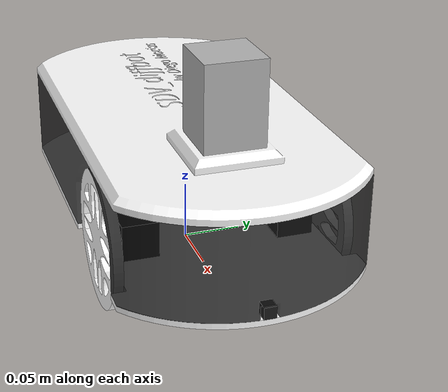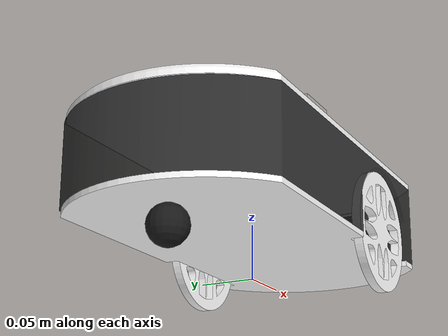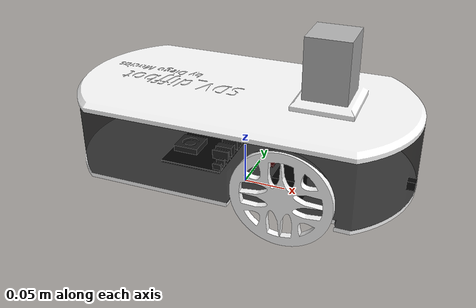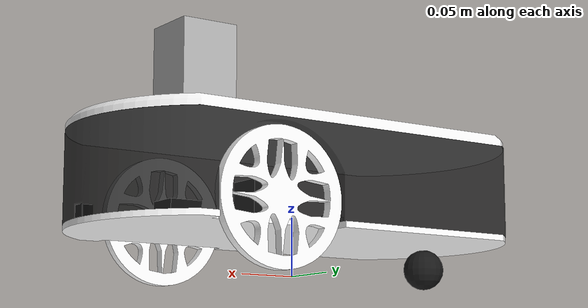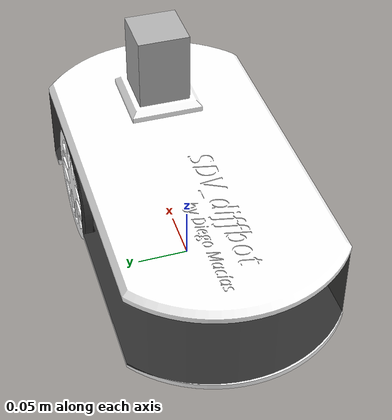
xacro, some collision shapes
<?xml version="1.0"?>
<robot name="puzzlebot" xmlns:xacro="http://ros.org/wiki/xacro">
  <xacro:property name="package_name" value="SDV_diffbot_sim"/>
  <xacro:property name="PI" value="3.14159265"/>
  <xacro:property name="wheelSeparation" value="0.180"/>
  <xacro:property name="wheelDiameter" value="0.112"/>
  <xacro:property name="wheelThickness" value="0.008"/>
  <xacro:property name="base_elevation" value="0.025"/>

  <xacro:arg name="base_color"    default="0.0 1.0 0.0 1.0"/>
  <xacro:arg name="ns" default="r1"/>

  <material name="gray">
    <color rgba="0.4 0.4 0.4 1.0"/>
  </material>

  <material name="gray2">
    <color rgba="0.6 0.6 0.6 1.0"/>
  </material>
  <material name="gray3">
    <color rgba="0.3 0.3 0.3 1.0"/>
  </material>

  <material name="black">
    <color rgba="0.1 0.1 0.1 1.0"/>
  </material>

  <material name="golden">
    <color rgba="1.0 0.4 0.0 1.0"/>
  </material>

  <material name="red">
    <color rgba="1.0 0.0 0.0 1.0"/>
  </material>

  <material name="glass">
    <color rgba="0.1 0.1 0.1 0.8"/>
  </material>

  <material name="white">
    <color rgba="1.0 1.0 1.0 1.0"/>
  </material>

  <link name="$(arg ns)/base_footprint"/>

  <joint name="$(arg ns)/base1_joint" type="fixed">
    <parent link="$(arg ns)/base_footprint"/>
    <child link="$(arg ns)/base1_link"/>
    <origin xyz="0 0 ${wheelDiameter/2-base_elevation}" rpy = "0 0 0"/> <!--0 ${wheelSeparation/2} ${wheelDiameter/2-base_elevation}-->
    <axis xyz="0 0 0"/>
  </joint>

  <link name="$(arg ns)/base1_link">
    <visual>
      <origin xyz="0.0 0.0 0.0" rpy="0 0 ${PI}"/>
      <geometry>
        <mesh filename = "package://${package_name}/meshes/base_SDV_diffbot.stl" scale="0.001 0.001 0.001"/>
      </geometry>
      <material name="white"/>
    </visual>
    <collision>
      <origin xyz="0.01 0 0.0025" rpy="0 0 ${PI/2}"/>
      <geometry>
        <box size="0.175 0.3 0.005"/>
      </geometry>
    </collision>
    <collision>
      <origin xyz="0.15 0 -0.025" rpy="0 0 0" />
      <geometry>
        <sphere radius="0.01" />
      </geometry>
    </collision>
		<inertial>
      <origin xyz="-0.0550 0 0" rpy="0 0 0"/>
      <mass value="0.485"/>
      <inertia ixx="0.001881" ixy="0.0" ixz="0.0" iyy="0.001133" iyz="0.0" izz="0.002815" />
    </inertial>
  </link>

  <joint name="$(arg ns)/chasis_joint" type="fixed">
    <parent link="$(arg ns)/base1_link"/>
    <child link="$(arg ns)/chasis_link"/>
    <origin xyz="0.017 0.0 0.005" rpy = "0 0 0"/>
  </joint>

  <link name="$(arg ns)/chasis_link">
    <visual>
      <origin xyz="0.0 0.0 0.0" rpy="0 0 ${PI}"/>
      <geometry>
        <mesh filename = "package://${package_name}/meshes/chasis_SDV_diffbot.stl" scale="0.001 0.001 0.001"/>
      </geometry>
      <material name="glass"/>
    </visual>
  </link>

   <joint name="$(arg ns)/base2_joint" type="fixed">
    <parent link="$(arg ns)/chasis_link"/>
    <child link="$(arg ns)/base2_link"/>
    <origin xyz="-0.017 0.0 0.077" rpy = "0 0 0"/>
  </joint>

  <link name="$(arg ns)/base2_link">
    <visual>
      <origin xyz="0.0 0.0 0.0" rpy="0 0 ${PI}"/>
      <geometry>
        <mesh filename = "package://${package_name}/meshes/base2_SDV_diffbot.stl" scale="0.001 0.001 0.001"/>
      </geometry>
      <material name="white"/>
    </visual>
    <collision>
      <origin xyz="0 0 0" rpy="0 0 ${PI/2}"/>
      <geometry>
        <box size="0.175 0.3 0.005"/>
      </geometry>
    </collision>
  </link>

  <joint name="$(arg ns)/left_wheel_box_joint" type="fixed">
    <parent link="$(arg ns)/base1_link"/>
    <child link="$(arg ns)/left_wheel_box_link"/>
    <origin xyz="0.075 0.065 0.02" rpy = "0 0 0"/>
    <axis xyz="0 0 0"/>
  </joint>

  <link name="$(arg ns)/left_wheel_box_link">
    <visual>
      <origin xyz="0.0 0.0 0.0" rpy="0 0 0"/>
      <geometry>
        <box size="0.03 0.03 0.03"/>
      </geometry>
      <material name="black"/>
    </visual>
    <collision>
      <origin xyz="0.0 0 0.0" rpy="0 0 0"/>
      <geometry>
        <box size="0.03 0.03 0.03"/>
      </geometry>
    </collision>
  </link>

  <joint name="$(arg ns)/right_wheel_box_joint" type="fixed">
    <parent link="$(arg ns)/base1_link"/>
    <child link="$(arg ns)/right_wheel_box_link"/>
    <origin xyz="0.075 -0.065 0.02" rpy = "0 0 0"/>
    <axis xyz="0 0 0"/>
  </joint>

  <link name="$(arg ns)/right_wheel_box_link">
    <visual>
      <origin xyz="0.0 0.0 0.0" rpy="0 0 0"/>
      <geometry>
        <box size="0.03 0.03 0.03"/>
      </geometry>
      <material name="black"/>
    </visual>
    <collision>
      <origin xyz="0.0 0 0.0" rpy="0 0 0"/>
      <geometry>
        <box size="0.03 0.03 0.03"/>
      </geometry>
    </collision>
  </link>

  <joint name="$(arg ns)/left_wheel_cylinder_joint" type="fixed">
    <parent link="$(arg ns)/left_wheel_box_link"/>
    <child link="$(arg ns)/left_wheel_cylinder_link"/>
    <origin xyz="0.0 0.0195 0.0" rpy = "${PI/2} 0 0"/>
    <axis xyz="0 0 0"/>
  </joint>

  <link name="$(arg ns)/left_wheel_cylinder_link">
    <visual>
      <origin xyz="0.0 0.0 0.0" rpy="0 0 0"/>
      <geometry>
        <cylinder length="0.009" radius="0.005"/>
      </geometry>
      <material name="golden"/>
    </visual>
    <collision>
      <origin xyz="0.0 0 0.0" rpy="0 0 0"/>
      <geometry>
        <cylinder length="0.009" radius="0.005"/>
      </geometry>
    </collision>
  </link>

  <joint name="$(arg ns)/right_wheel_cylinder_joint" type="fixed">
    <parent link="$(arg ns)/right_wheel_box_link"/>
    <child link="$(arg ns)/right_wheel_cylinder_link"/>
    <origin xyz="0.0 -0.0195 0.0" rpy = "${PI/2} 0 0"/>
    <axis xyz="0 0 0"/>
  </joint>

  <link name="$(arg ns)/right_wheel_cylinder_link">
    <visual>
      <origin xyz="0.0 0.0 0.0" rpy="0 0 0"/>
      <geometry>
        <cylinder length="0.009" radius="0.005"/>
      </geometry>
      <material name="golden"/>
    </visual>
    <collision>
      <origin xyz="0.0 0 0.0" rpy="0 0 0"/>
      <geometry>
        <cylinder length="0.009" radius="0.005"/>
      </geometry>
    </collision>
  </link>

  <joint name="$(arg ns)/left_wheel_joint" type="continuous">
    <parent link="$(arg ns)/left_wheel_cylinder_link"/>
    <child link="$(arg ns)/left_wheel_link"/>
    <origin xyz="0.0 0.0 -0.0125" rpy = "0 0 0"/>
    <axis xyz="0 0 -1"/>
  </joint>

  <link name="$(arg ns)/left_wheel_link">
    <visual>
      <origin xyz="0 0 0" rpy="0 0 0"/>
      <geometry>
        <mesh filename = "package://${package_name}/meshes/rueda_puzzlebot.stl" scale="0.001 0.001 0.001"/>
      </geometry>
      <material name="white"/>
    </visual>
    <collision>
      <origin xyz="0.0 0.0 0.004" rpy="0 0 0"/>
      <geometry>
        <cylinder length="0.008" radius="0.056"/>
      </geometry>
    </collision>
    <inertial>
      <origin xyz="0 0 0" />
      <mass value="1" />
      <inertia ixx="0.0135417" ixy="0.0" ixz="0.0"  iyy="0.0135417" iyz="0.0"  izz="0.025" />
    </inertial>
  </link>

  <joint name="$(arg ns)/right_wheel_joint" type="continuous">
    <parent link="$(arg ns)/right_wheel_cylinder_link"/>
    <child link="$(arg ns)/right_wheel_link"/>
    <origin xyz="0.0 0.0 0.0045" rpy = "0 0 0"/>
    <axis xyz="0 0 -1"/>
  </joint>

  <link name="$(arg ns)/right_wheel_link">
    <visual>
      <origin xyz="0 0 0" rpy="0 0 0"/>
      <geometry>
        <mesh filename = "package://${package_name}/meshes/rueda_puzzlebot.stl" scale="0.001 0.001 0.001"/>
      </geometry>
      <material name="white"/>
    </visual>
    <collision>
      <origin xyz="0.0 0.0 0.004" rpy="0 0 0"/>
      <geometry>
        <cylinder length="0.008" radius="0.056"/>
      </geometry>
    </collision>
    <inertial>
      <origin xyz="0 0 0" />
      <mass value="1" />
      <inertia ixx="0.0135417" ixy="0.0" ixz="0.0"  iyy="0.0135417" iyz="0.0"  izz="0.025" />
    </inertial>
  </link>

  <joint name="$(arg ns)/caster_wheel_joint" type="fixed">
    <parent link="$(arg ns)/base1_link"/>
    <child link="$(arg ns)/caster_wheel_link"/>
    <origin xyz="-0.145 0 -0.018" rpy="0 0 0"/>
  </joint>

  <link name="$(arg ns)/caster_wheel_link">
    <visual>
      <origin xyz="0 0 0" rpy="0 0 0"/>
      <geometry>
        <sphere radius="0.018"/>
      </geometry>
      <material name="black"/>
    </visual>

    <collision>
      <origin xyz="0 0 0" rpy="0 0 0"/>
      <geometry>
        <sphere radius="0.018"/>
      </geometry>
    </collision>

    <inertial>
      <mass value="0.5"/>
      <origin xyz="0 0 0" rpy="0 0 0"/>
      <inertia
        ixx="0.000000625" ixy="0" ixz="0"
        iyy="0.000000625" iyz="0"
        izz="0.000000625"/>
    </inertial>
  </link>

  <joint name="$(arg ns)/rubik_joint" type="fixed">
      <parent link="$(arg ns)/base1_link"/>
      <child link="$(arg ns)/rubik_link"/>
      <origin xyz="-0.05 0 0.005" rpy = "0 0 ${PI/2}"/>
      <axis xyz="0 0 0"/>
    </joint>

    <link name="$(arg ns)/rubik_link">
      <visual>
        <origin xyz="0 0 0" rpy="0 0 0"/>
        <geometry>
          <mesh filename = "package://${package_name}/meshes/rubik.stl" scale="0.001 0.001 0.001"/>
        </geometry>
        <material name="gray2"/>
      </visual>
      <collision>
        <origin xyz="0 0 0" rpy="0 0 0"/>
        <geometry>
          <box size="0.1 0.07 0.002"/>
        </geometry>
      </collision>
    </link>

    <joint name="$(arg ns)/base_rubik_joint" type="fixed">
      <parent link="$(arg ns)/base1_link"/>
      <child link="$(arg ns)/base_rubik_link"/>
      <origin xyz="-0.05 0 0.005" rpy = "0 0 ${PI/2}"/>
      <axis xyz="0 0 0"/>
    </joint>

    <link name="$(arg ns)/base_rubik_link">
      <visual>
        <origin xyz="0 0 0" rpy="0 0 0"/>
        <geometry>
          <box size="0.1 0.075 0.0055"/>
        </geometry>
        <material name="black"/>
      </visual>
      <collision>
        <origin xyz="0 0 0" rpy="0 0 0"/>
        <geometry>
          <box size="0.1 0.075 0.0055"/>
        </geometry>
      </collision>
    </link>

    <!--IMU-->
    <joint name="$(arg ns)/IMU_base_joint" type="fixed">
      <parent link="$(arg ns)/base1_link"/>
      <child link="$(arg ns)/IMU_base_link"/>
      <origin xyz="0.03 0 0.005" rpy = "0 0 ${PI/2}"/>
      <axis xyz="0 0 0"/>
    </joint>

    <link name="$(arg ns)/IMU_base_link">
      <visual>
        <origin xyz="0 0 0" rpy="0 0 0"/>
        <geometry>
          <box size="0.03 0.02 0.0055"/>
        </geometry>
        <material name="red"/>
      </visual>
      <collision>
        <origin xyz="0 0 0" rpy="0 0 0"/>
        <geometry>
          <box size="0.03 0.02 0.0055"/>
        </geometry>
      </collision>
    </link>

    <gazebo reference = "$(arg ns)/IMU_base_link">
    <sensor name = "imu_sensor" type="imu">
      <ignition_frame_id>$(arg ns)/IMU_base_link</ignition_frame_id>
      <always_on>1</always_on>
      <update_rate>50</update_rate>
      <visualize>false</visualize>
      <topic>$(arg ns)/imu</topic>
      <imu>
        <enable_orientation>0</enable_orientation>
        <angular_velocity>
          <x>
            <noise type = "gaussian">
              <mean>0</mean>
              <stddev>0.009</stddev>
              <bias_mean>0.00075</bias_mean>
              <bias_stddev>0.005</bias_stddev>
              <dynamic_bias_stddev>0.00002</dynamic_bias_stddev>
              <precision>0.00025</precision>
            </noise>
          </x>
          <y>
            <noise type = "gaussian">
              <mean>0</mean>
              <stddev>0.009</stddev>
              <bias_mean>0.00075</bias_mean>
              <bias_stddev>0.005</bias_stddev>
              <dynamic_bias_stddev>0.00002</dynamic_bias_stddev>
              <precision>0.00025</precision>
            </noise>
          </y>
          <z>
            <noise type = "gaussian">
              <mean>0</mean>
              <stddev>0.009</stddev>
              <bias_mean>0.00075</bias_mean>
              <bias_stddev>0.005</bias_stddev>
              <dynamic_bias_stddev>0.00002</dynamic_bias_stddev>
              <precision>0.00025</precision>
            </noise>
          </z>
        </angular_velocity>
        <linear_acceleration>
          <x>
            <noise type = "gaussian">
              <mean>0</mean>
              <stddev>0.021</stddev>
              <bias_mean>0.05</bias_mean>
              <bias_stddev>0.0075</bias_stddev>
              <dynamic_bias_stddev>0.000375</dynamic_bias_stddev>
              <dynamic_bias_correlation_time>175.0</dynamic_bias_correlation_time>
              <precision>0.005</precision>
            </noise>
          </x>
          <y>
            <noise type = "gaussian">
              <mean>0</mean>
              <stddev>0.021</stddev>
              <bias_mean>0.05</bias_mean>
              <bias_stddev>0.0075</bias_stddev>
              <dynamic_bias_stddev>0.000375</dynamic_bias_stddev>
              <dynamic_bias_correlation_time>175.0</dynamic_bias_correlation_time>
              <precision>0.005</precision>
            </noise>
          </y>
          <z>
            <noise type = "gaussian">
              <mean>0</mean>
              <stddev>0.021</stddev>
              <bias_mean>0.05</bias_mean>
              <bias_stddev>0.0075</bias_stddev>
              <dynamic_bias_stddev>0.000375</dynamic_bias_stddev>
              <dynamic_bias_correlation_time>175.0</dynamic_bias_correlation_time>
              <precision>0.005</precision>
            </noise>
          </z>
        </linear_acceleration>
      </imu>
    </sensor>
  </gazebo>

<!--Camera-->
<joint name="$(arg ns)/zed_camera_joint" type="fixed">
    <parent link="$(arg ns)/base1_link"/>
    <child link="$(arg ns)/zed_camera_link"/>
    <origin xyz="0.195 0.0 0.01" rpy="0 0 0"/>
    <axis xyz="0 0 1" />
  </joint>

  <link name="$(arg ns)/zed_camera_link">
    <visual>
      <origin xyz="0 0 0" rpy="0 0 0"/>
      <geometry>
        <box size="0.01 0.01 0.01"/>
      </geometry>
      <material name="black"/>
    </visual>
    <collision>
      <origin xyz="0 0 0" rpy="0 0 0"/>
      <geometry>
        <box size="0.01 0.01 0.01"/>
      </geometry>
    </collision>
     <inertial>
      <mass value="1e-5" />
      <origin xyz="0 0 0" rpy="0 0 0"/>
      <inertia ixx="1e-6" ixy="0" ixz="0" iyy="1e-6" iyz="0" izz="1e-6" />
    </inertial>
  </link>

  <gazebo reference="$(arg ns)/zed_camera_link">
     <sensor name="rgbd_camera" type="rgbd_camera">
      <ignition_frame_id>$(arg ns)/zed_camera_link</ignition_frame_id>
      <camera name="zed_camera">
        <horizontal_fov>0.8709216071359963</horizontal_fov>
        <distortion>
          <k1>0.0</k1>
          <k2>0.0</k2>
          <k3>0.0</k3>
          <p1>0.0</p1>
          <p2>0.0</p2>
          <center>0.5 0.5</center>
        </distortion>
        <image>
          <width>640</width>
          <height>480</height>
          <format>B8G8R8</format>
        </image>
        <clip>
          <near>0.02</near>
          <far>300</far>
        </clip>
        <depth_camera>
          <clip>
            <near>0.1</near>
            <far>20</far>
          </clip>
        </depth_camera>
        <noise>
          <type>gaussian</type>
          <mean>0</mean>
          <stddev>0.007</stddev>
        </noise>
      </camera>
      <always_on>1</always_on>
      <update_rate>15</update_rate>
      <visualize>0</visualize>
      <topic>$(arg ns)/zed_camera</topic>
    </sensor>
  </gazebo>

<!-- LIDAR -->
  <joint name="$(arg ns)/hokuyo_joint" type="fixed">
    <parent link="$(arg ns)/base2_link"/>
    <child link="$(arg ns)/hokuyo_link" />
    <origin xyz="0.0975 0 0.055" rpy="0 0 0"/>
    <axis xyz="0 0 1" />
  </joint>

  <link name="$(arg ns)/hokuyo_link">
    <visual>
      <origin xyz="0 0 0" rpy="0 0 0"/>
      <geometry>
        <mesh filename="package://${package_name}/meshes/hokuyo.dae"/>
        <material name="black" />
      </geometry>
    </visual>
    <collision>
      <origin xyz="0 0 0" rpy="0 0 0"/>
      <geometry>
        <box size="0.05 0.05 0.07"/>
      </geometry>
    </collision>
  </link>

  <gazebo reference = "$(arg ns)/hokuyo_link">
    <sensor name='gpu_lidar' type='gpu_lidar'>
      <ignition_frame_id>$(arg ns)/hokuyo_link</ignition_frame_id>
      <update_rate>40</update_rate>
      <ray>
        <scan>
          <horizontal>
            <samples>1081</samples>
            <resolution>1</resolution>
            <min_angle>-2.3561944902</min_angle>
            <max_angle>2.3561944902</max_angle>
          </horizontal>
        </scan>
        <range>
          <min>0.1</min>
          <max>10.0</max>
          <resolution>0.01</resolution>
        </range>
        <noise>
          <type> gaussian</type>
          <mean>0.0</mean>
          <stddev>0.01</stddev>
        </noise>
      </ray>
      <alwaysOn>1</alwaysOn>
      <visualize>true</visualize>
      <topic>$(arg ns)/hokuyo</topic>
    </sensor>
  </gazebo>

    <gazebo>
			<plugin
				filename="ignition-gazebo-diff-drive-system"
				name="ignition::gazebo::systems::DiffDrive">
				<left_joint>$(arg ns)/left_wheel_joint</left_joint>
				<right_joint>$(arg ns)/right_wheel_joint</right_joint>
				<wheel_separation>${wheelSeparation}</wheel_separation>
				<wheel_radius>${wheelDiameter/2}</wheel_radius>
				<odom_publish_frequency>20</odom_publish_frequency>
				<max_linear_acceleration>2.0</max_linear_acceleration>
				<min_linear_acceleration>-2.0</min_linear_acceleration>
				<max_angular_acceleration>5</max_angular_acceleration>
				<min_angular_acceleration>-5</min_angular_acceleration>
				<max_linear_velocity>1.0</max_linear_velocity>
				<min_linear_velocity>-1.0</min_linear_velocity>
				<max_angular_velocity>5</max_angular_velocity>
				<min_angular_velocity>-5</min_angular_velocity>
			</plugin>

			<plugin
				filename="gz-sim-joint-state-publisher-system"
				name="gz::sim::systems::JointStatePublisher">
			</plugin>
    </gazebo>

</robot>
